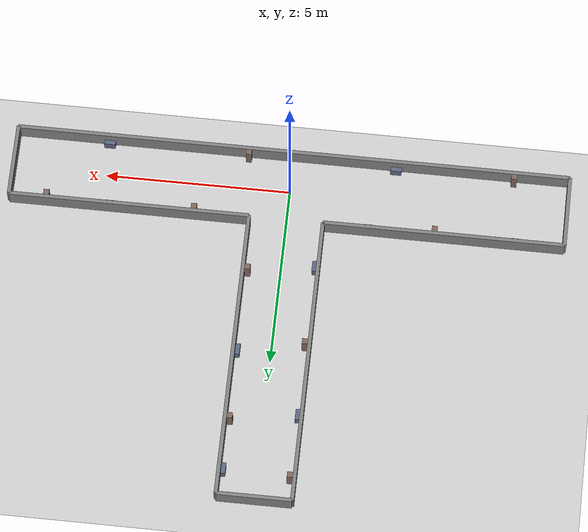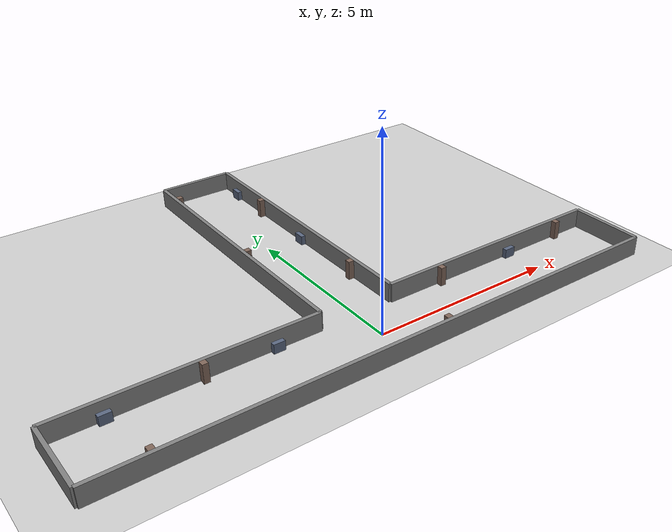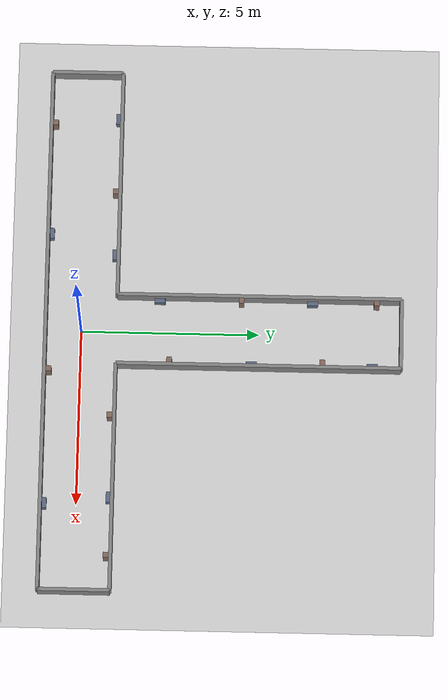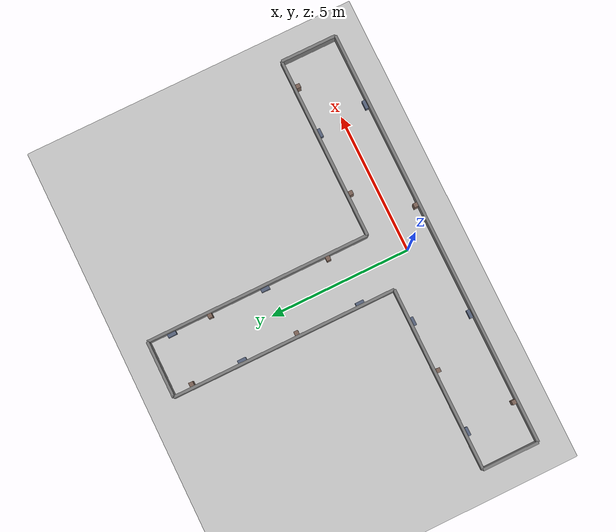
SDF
<?xml version="1.0" ?>
<sdf version="1.6">
  <world name="default">
    <!-- Ignition Fortress (v6) plugins -->
    <plugin filename="libignition-gazebo-physics-system.so" name="ignition::gazebo::systems::Physics"/>
    <plugin filename="libignition-gazebo-user-commands-system.so" name="ignition::gazebo::systems::UserCommands"/>
    <plugin filename="libignition-gazebo-scene-broadcaster-system.so" name="ignition::gazebo::systems::SceneBroadcaster"/>
    <plugin filename="libignition-gazebo-imu-system.so" name="ignition::gazebo::systems::Imu"/>
    <plugin filename="libignition-gazebo-sensors-system.so" name="ignition::gazebo::systems::Sensors">
      <render_engine>ogre2</render_engine>
    </plugin>

    <!-- Directional light -->
    <light name="sun" type="directional">
      <pose>0 0 10 0 0.5 0</pose>
      <diffuse>1 1 1 1</diffuse>
      <specular>1 1 1 1</specular>
      <direction>-1 -1 -1</direction>
      <cast_shadows>true</cast_shadows>
    </light>

    <!-- Inline ground plane -->
    <model name="ground_plane">
      <static>true</static>
      <link name="link">
        <collision name="collision">
          <geometry>
            <plane>
              <normal>0 0 1</normal>
              <size>50 50</size>
            </plane>
          </geometry>
          <surface>
            <friction>
              <ode>
                <mu>100</mu>
                <mu2>50</mu2>
              </ode>
            </friction>
          </surface>
        </collision>
        <visual name="visual">
          <geometry>
            <plane>
              <normal>0 0 1</normal>
              <size>50 50</size>
            </plane>
          </geometry>
          <material>
            <ambient>0.8 0.8 0.8 1</ambient>
            <diffuse>0.8 0.8 0.8 1</diffuse>
            <specular>0.1 0.1 0.1 1</specular>
          </material>
        </visual>
      </link>
    </model>

    <!-- Main corridor: walls at y=±1, x=-7.5 to +7.5 -->
    <!-- South wall (continuous) -->
    <model name="wall_south">
      <static>true</static>
      <pose>0 -1.0 0.25 0 0 0</pose>
      <link name="link">
        <collision name="collision">
          <geometry><box><size>15 0.1 0.5</size></box></geometry>
        </collision>
        <visual name="visual">
          <geometry><box><size>15 0.1 0.5</size></box></geometry>
          <material>
            <ambient>0.3 0.3 0.3 1</ambient>
            <diffuse>0.5 0.5 0.5 1</diffuse>
            <specular>0.1 0.1 0.1 1</specular>
          </material>
        </visual>
      </link>
    </model>

    <!-- North wall left segment (x=-7.5 to -1, gap at junction) -->
    <model name="wall_north_left">
      <static>true</static>
      <pose>-4.25 1.0 0.25 0 0 0</pose>
      <link name="link">
        <collision name="collision">
          <geometry><box><size>6.5 0.1 0.5</size></box></geometry>
        </collision>
        <visual name="visual">
          <geometry><box><size>6.5 0.1 0.5</size></box></geometry>
          <material>
            <ambient>0.3 0.3 0.3 1</ambient>
            <diffuse>0.5 0.5 0.5 1</diffuse>
            <specular>0.1 0.1 0.1 1</specular>
          </material>
        </visual>
      </link>
    </model>

    <!-- North wall right segment (x=1 to 7.5) -->
    <model name="wall_north_right">
      <static>true</static>
      <pose>4.25 1.0 0.25 0 0 0</pose>
      <link name="link">
        <collision name="collision">
          <geometry><box><size>6.5 0.1 0.5</size></box></geometry>
        </collision>
        <visual name="visual">
          <geometry><box><size>6.5 0.1 0.5</size></box></geometry>
          <material>
            <ambient>0.3 0.3 0.3 1</ambient>
            <diffuse>0.5 0.5 0.5 1</diffuse>
            <specular>0.1 0.1 0.1 1</specular>
          </material>
        </visual>
      </link>
    </model>

    <!-- West end wall -->
    <model name="wall_west">
      <static>true</static>
      <pose>-7.5 0 0.25 0 0 0</pose>
      <link name="link">
        <collision name="collision">
          <geometry><box><size>0.1 2.0 0.5</size></box></geometry>
        </collision>
        <visual name="visual">
          <geometry><box><size>0.1 2.0 0.5</size></box></geometry>
          <material>
            <ambient>0.3 0.3 0.3 1</ambient>
            <diffuse>0.5 0.5 0.5 1</diffuse>
            <specular>0.1 0.1 0.1 1</specular>
          </material>
        </visual>
      </link>
    </model>

    <!-- East end wall -->
    <model name="wall_east">
      <static>true</static>
      <pose>7.5 0 0.25 0 0 0</pose>
      <link name="link">
        <collision name="collision">
          <geometry><box><size>0.1 2.0 0.5</size></box></geometry>
        </collision>
        <visual name="visual">
          <geometry><box><size>0.1 2.0 0.5</size></box></geometry>
          <material>
            <ambient>0.3 0.3 0.3 1</ambient>
            <diffuse>0.5 0.5 0.5 1</diffuse>
            <specular>0.1 0.1 0.1 1</specular>
          </material>
        </visual>
      </link>
    </model>

    <!-- Branch: walls at x=±1, y=1 to 9 -->
    <!-- Branch east wall -->
    <model name="wall_branch_east">
      <static>true</static>
      <pose>1.0 5.0 0.25 0 0 0</pose>
      <link name="link">
        <collision name="collision">
          <geometry><box><size>0.1 8 0.5</size></box></geometry>
        </collision>
        <visual name="visual">
          <geometry><box><size>0.1 8 0.5</size></box></geometry>
          <material>
            <ambient>0.3 0.3 0.3 1</ambient>
            <diffuse>0.5 0.5 0.5 1</diffuse>
            <specular>0.1 0.1 0.1 1</specular>
          </material>
        </visual>
      </link>
    </model>

    <!-- Branch west wall -->
    <model name="wall_branch_west">
      <static>true</static>
      <pose>-1.0 5.0 0.25 0 0 0</pose>
      <link name="link">
        <collision name="collision">
          <geometry><box><size>0.1 8 0.5</size></box></geometry>
        </collision>
        <visual name="visual">
          <geometry><box><size>0.1 8 0.5</size></box></geometry>
          <material>
            <ambient>0.3 0.3 0.3 1</ambient>
            <diffuse>0.5 0.5 0.5 1</diffuse>
            <specular>0.1 0.1 0.1 1</specular>
          </material>
        </visual>
      </link>
    </model>

    <!-- Branch north end wall -->
    <model name="wall_branch_north">
      <static>true</static>
      <pose>0 9 0.25 0 0 0</pose>
      <link name="link">
        <collision name="collision">
          <geometry><box><size>2.0 0.1 0.5</size></box></geometry>
        </collision>
        <visual name="visual">
          <geometry><box><size>2.0 0.1 0.5</size></box></geometry>
          <material>
            <ambient>0.3 0.3 0.3 1</ambient>
            <diffuse>0.5 0.5 0.5 1</diffuse>
            <specular>0.1 0.1 0.1 1</specular>
          </material>
        </visual>
      </link>
    </model>

    <!-- Wall-mounted features for LiDAR/SLAM scan matching -->
    <!-- Main south wall (along X): offset Y by +0.075 from inner face y=-0.95 → y=-0.875 -->
    <model name="feat_1">
      <static>true</static>
      <pose>-6.0 -0.875 0.25 0 0 0</pose>
      <link name="link">
        <collision name="collision">
          <geometry><box><size>0.15 0.15 0.5</size></box></geometry>
        </collision>
        <visual name="visual">
          <geometry><box><size>0.15 0.15 0.5</size></box></geometry>
          <material>
            <ambient>0.4 0.3 0.25 1</ambient>
            <diffuse>0.5 0.4 0.35 1</diffuse>
            <specular>0.1 0.1 0.1 1</specular>
          </material>
        </visual>
      </link>
    </model>
    <model name="feat_2">
      <static>true</static>
      <pose>-2.8 -0.89 0.125 0 0 0</pose>
      <link name="link">
        <collision name="collision">
          <geometry><box><size>0.3 0.12 0.25</size></box></geometry>
        </collision>
        <visual name="visual">
          <geometry><box><size>0.3 0.12 0.25</size></box></geometry>
          <material>
            <ambient>0.25 0.3 0.4 1</ambient>
            <diffuse>0.35 0.4 0.5 1</diffuse>
            <specular>0.1 0.1 0.1 1</specular>
          </material>
        </visual>
      </link>
    </model>
    <model name="feat_3">
      <static>true</static>
      <pose>1.2 -0.875 0.25 0 0 0</pose>
      <link name="link">
        <collision name="collision">
          <geometry><box><size>0.15 0.15 0.5</size></box></geometry>
        </collision>
        <visual name="visual">
          <geometry><box><size>0.15 0.15 0.5</size></box></geometry>
          <material>
            <ambient>0.4 0.3 0.25 1</ambient>
            <diffuse>0.5 0.4 0.35 1</diffuse>
            <specular>0.1 0.1 0.1 1</specular>
          </material>
        </visual>
      </link>
    </model>
    <model name="feat_4">
      <static>true</static>
      <pose>5.0 -0.89 0.125 0 0 0</pose>
      <link name="link">
        <collision name="collision">
          <geometry><box><size>0.3 0.12 0.25</size></box></geometry>
        </collision>
        <visual name="visual">
          <geometry><box><size>0.3 0.12 0.25</size></box></geometry>
          <material>
            <ambient>0.25 0.3 0.4 1</ambient>
            <diffuse>0.35 0.4 0.5 1</diffuse>
            <specular>0.1 0.1 0.1 1</specular>
          </material>
        </visual>
      </link>
    </model>
    <!-- Main north wall left (along X): offset Y by -0.075 → y=0.875 -->
    <model name="feat_5">
      <static>true</static>
      <pose>-6.2 0.89 0.125 0 0 0</pose>
      <link name="link">
        <collision name="collision">
          <geometry><box><size>0.3 0.12 0.25</size></box></geometry>
        </collision>
        <visual name="visual">
          <geometry><box><size>0.3 0.12 0.25</size></box></geometry>
          <material>
            <ambient>0.25 0.3 0.4 1</ambient>
            <diffuse>0.35 0.4 0.5 1</diffuse>
            <specular>0.1 0.1 0.1 1</specular>
          </material>
        </visual>
      </link>
    </model>
    <model name="feat_6">
      <static>true</static>
      <pose>-4.0 0.875 0.25 0 0 0</pose>
      <link name="link">
        <collision name="collision">
          <geometry><box><size>0.15 0.15 0.5</size></box></geometry>
        </collision>
        <visual name="visual">
          <geometry><box><size>0.15 0.15 0.5</size></box></geometry>
          <material>
            <ambient>0.4 0.3 0.25 1</ambient>
            <diffuse>0.5 0.4 0.35 1</diffuse>
            <specular>0.1 0.1 0.1 1</specular>
          </material>
        </visual>
      </link>
    </model>
    <model name="feat_7">
      <static>true</static>
      <pose>-2.2 0.89 0.125 0 0 0</pose>
      <link name="link">
        <collision name="collision">
          <geometry><box><size>0.3 0.12 0.25</size></box></geometry>
        </collision>
        <visual name="visual">
          <geometry><box><size>0.3 0.12 0.25</size></box></geometry>
          <material>
            <ambient>0.25 0.3 0.4 1</ambient>
            <diffuse>0.35 0.4 0.5 1</diffuse>
            <specular>0.1 0.1 0.1 1</specular>
          </material>
        </visual>
      </link>
    </model>
    <!-- Main north wall right (along X): y=0.875 -->
    <model name="feat_8">
      <static>true</static>
      <pose>2.5 0.875 0.25 0 0 0</pose>
      <link name="link">
        <collision name="collision">
          <geometry><box><size>0.15 0.15 0.5</size></box></geometry>
        </collision>
        <visual name="visual">
          <geometry><box><size>0.15 0.15 0.5</size></box></geometry>
          <material>
            <ambient>0.4 0.3 0.25 1</ambient>
            <diffuse>0.5 0.4 0.35 1</diffuse>
            <specular>0.1 0.1 0.1 1</specular>
          </material>
        </visual>
      </link>
    </model>
    <model name="feat_9">
      <static>true</static>
      <pose>4.8 0.89 0.125 0 0 0</pose>
      <link name="link">
        <collision name="collision">
          <geometry><box><size>0.3 0.12 0.25</size></box></geometry>
        </collision>
        <visual name="visual">
          <geometry><box><size>0.3 0.12 0.25</size></box></geometry>
          <material>
            <ambient>0.25 0.3 0.4 1</ambient>
            <diffuse>0.35 0.4 0.5 1</diffuse>
            <specular>0.1 0.1 0.1 1</specular>
          </material>
        </visual>
      </link>
    </model>
    <model name="feat_10">
      <static>true</static>
      <pose>6.5 0.875 0.25 0 0 0</pose>
      <link name="link">
        <collision name="collision">
          <geometry><box><size>0.15 0.15 0.5</size></box></geometry>
        </collision>
        <visual name="visual">
          <geometry><box><size>0.15 0.15 0.5</size></box></geometry>
          <material>
            <ambient>0.4 0.3 0.25 1</ambient>
            <diffuse>0.5 0.4 0.35 1</diffuse>
            <specular>0.1 0.1 0.1 1</specular>
          </material>
        </visual>
      </link>
    </model>
    <!-- Branch east wall (along Y): offset X by -0.075 → x=0.875 -->
    <model name="feat_11">
      <static>true</static>
      <pose>0.875 2.5 0.25 0 0 0</pose>
      <link name="link">
        <collision name="collision">
          <geometry><box><size>0.15 0.15 0.5</size></box></geometry>
        </collision>
        <visual name="visual">
          <geometry><box><size>0.15 0.15 0.5</size></box></geometry>
          <material>
            <ambient>0.4 0.3 0.25 1</ambient>
            <diffuse>0.5 0.4 0.35 1</diffuse>
            <specular>0.1 0.1 0.1 1</specular>
          </material>
        </visual>
      </link>
    </model>
    <model name="feat_12">
      <static>true</static>
      <pose>0.89 4.8 0.125 0 0 0</pose>
      <link name="link">
        <collision name="collision">
          <geometry><box><size>0.12 0.3 0.25</size></box></geometry>
        </collision>
        <visual name="visual">
          <geometry><box><size>0.12 0.3 0.25</size></box></geometry>
          <material>
            <ambient>0.25 0.3 0.4 1</ambient>
            <diffuse>0.35 0.4 0.5 1</diffuse>
            <specular>0.1 0.1 0.1 1</specular>
          </material>
        </visual>
      </link>
    </model>
    <model name="feat_13">
      <static>true</static>
      <pose>0.875 6.8 0.25 0 0 0</pose>
      <link name="link">
        <collision name="collision">
          <geometry><box><size>0.15 0.15 0.5</size></box></geometry>
        </collision>
        <visual name="visual">
          <geometry><box><size>0.15 0.15 0.5</size></box></geometry>
          <material>
            <ambient>0.4 0.3 0.25 1</ambient>
            <diffuse>0.5 0.4 0.35 1</diffuse>
            <specular>0.1 0.1 0.1 1</specular>
          </material>
        </visual>
      </link>
    </model>
    <model name="feat_14">
      <static>true</static>
      <pose>0.89 8.2 0.125 0 0 0</pose>
      <link name="link">
        <collision name="collision">
          <geometry><box><size>0.12 0.3 0.25</size></box></geometry>
        </collision>
        <visual name="visual">
          <geometry><box><size>0.12 0.3 0.25</size></box></geometry>
          <material>
            <ambient>0.25 0.3 0.4 1</ambient>
            <diffuse>0.35 0.4 0.5 1</diffuse>
            <specular>0.1 0.1 0.1 1</specular>
          </material>
        </visual>
      </link>
    </model>
    <!-- Branch west wall (along Y): offset X by +0.075 → x=-0.875 -->
    <model name="feat_15">
      <static>true</static>
      <pose>-0.89 2.2 0.125 0 0 0</pose>
      <link name="link">
        <collision name="collision">
          <geometry><box><size>0.12 0.3 0.25</size></box></geometry>
        </collision>
        <visual name="visual">
          <geometry><box><size>0.12 0.3 0.25</size></box></geometry>
          <material>
            <ambient>0.25 0.3 0.4 1</ambient>
            <diffuse>0.35 0.4 0.5 1</diffuse>
            <specular>0.1 0.1 0.1 1</specular>
          </material>
        </visual>
      </link>
    </model>
    <model name="feat_16">
      <static>true</static>
      <pose>-0.875 4.5 0.25 0 0 0</pose>
      <link name="link">
        <collision name="collision">
          <geometry><box><size>0.15 0.15 0.5</size></box></geometry>
        </collision>
        <visual name="visual">
          <geometry><box><size>0.15 0.15 0.5</size></box></geometry>
          <material>
            <ambient>0.4 0.3 0.25 1</ambient>
            <diffuse>0.5 0.4 0.35 1</diffuse>
            <specular>0.1 0.1 0.1 1</specular>
          </material>
        </visual>
      </link>
    </model>
    <model name="feat_17">
      <static>true</static>
      <pose>-0.89 6.5 0.125 0 0 0</pose>
      <link name="link">
        <collision name="collision">
          <geometry><box><size>0.12 0.3 0.25</size></box></geometry>
        </collision>
        <visual name="visual">
          <geometry><box><size>0.12 0.3 0.25</size></box></geometry>
          <material>
            <ambient>0.25 0.3 0.4 1</ambient>
            <diffuse>0.35 0.4 0.5 1</diffuse>
            <specular>0.1 0.1 0.1 1</specular>
          </material>
        </visual>
      </link>
    </model>
    <model name="feat_18">
      <static>true</static>
      <pose>-0.875 8.3 0.25 0 0 0</pose>
      <link name="link">
        <collision name="collision">
          <geometry><box><size>0.15 0.15 0.5</size></box></geometry>
        </collision>
        <visual name="visual">
          <geometry><box><size>0.15 0.15 0.5</size></box></geometry>
          <material>
            <ambient>0.4 0.3 0.25 1</ambient>
            <diffuse>0.5 0.4 0.35 1</diffuse>
            <specular>0.1 0.1 0.1 1</specular>
          </material>
        </visual>
      </link>
    </model>
  </world>
</sdf>
